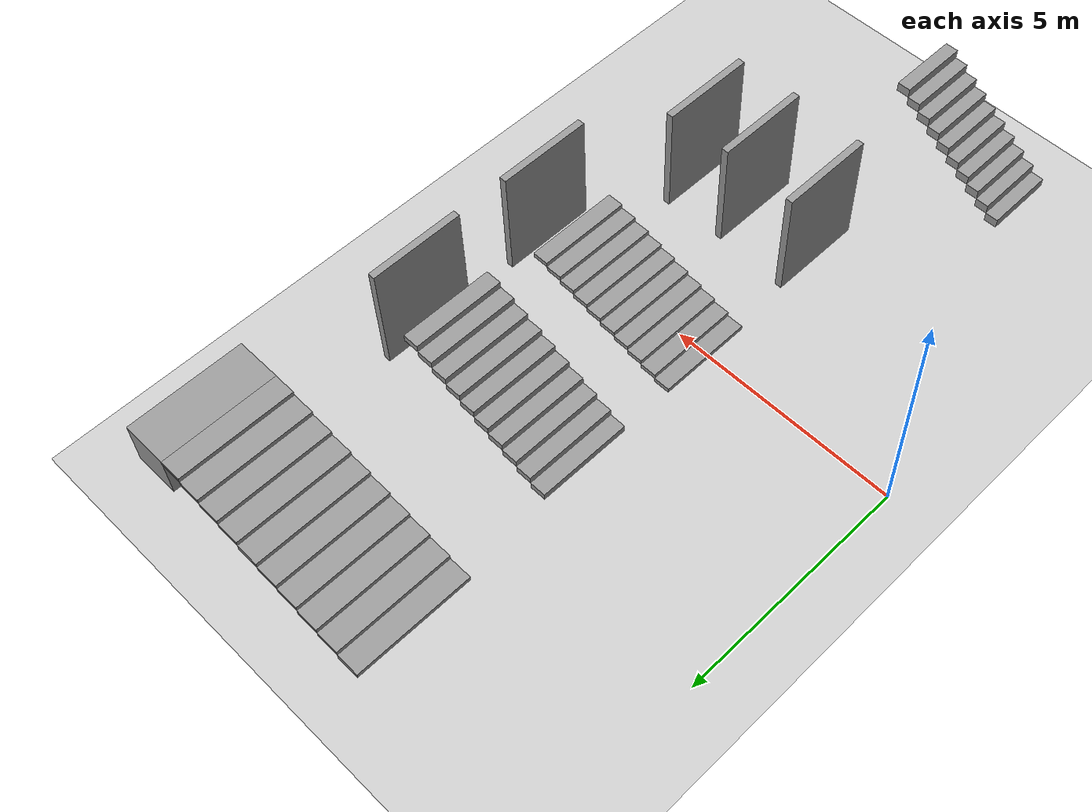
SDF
<sdf version="1.7">
 <world name="default">
  <light name="sun" type="directional">
   <pose>0 0 10 0 -0 0</pose>
   <diffuse>0.8 0.8 0.8 1</diffuse>
   <specular>0.2 0.2 0.2 1</specular>
   <attenuation>
    <range>1000</range>
    <constant>0.9</constant>
    <linear>0.01</linear>
    <quadratic>0.001</quadratic>
   </attenuation>
   <direction>-0.5 0.1 -0.9</direction>
   <spot><inner_angle>0</inner_angle><outer_angle>0</outer_angle><falloff>0</falloff></spot>
  </light>
  <model name="ground_plane">
   <static>1</static>
   <link name="link">
    <collision name="collision">
     <geometry><plane><normal>0 0 1</normal><size>100 100</size></plane></geometry>
     <surface>
      <contact><collide_bitmask>65535</collide_bitmask></contact>
      <friction><ode><mu>100</mu><mu2>50</mu2></ode></friction>
     </surface>
    </collision>
    <visual name="visual">
     <cast_shadows>0</cast_shadows>
     <geometry><plane><normal>0 0 1</normal><size>100 100</size></plane></geometry>
     <material>
      <script><uri>file://media/materials/scripts/gazebo.material</uri><name>Gazebo/Grey</name></script>
     </material>
    </visual>
   </link>
  </model>
  <gravity>0 0 -9.8</gravity>
  <magnetic_field>6e-06 2.3e-05 -4.2e-05</magnetic_field>
  <atmosphere type="adiabatic"/>
  <physics type="ode">
   <max_step_size>0.0002</max_step_size>
   <real_time_factor>1</real_time_factor>
   <real_time_update_rate>5000</real_time_update_rate>
   <gravity>0 0 -9.81</gravity>
   <ode>
    <solver><type>quick</type><iters>50</iters><sor>1.3</sor></solver>
    <constraints>
     <cfm>0.0</cfm>
     <erp>0.2</erp>
     <contact_max_correcting_vel>10.0</contact_max_correcting_vel>
     <contact_surface_layer>0.001</contact_surface_layer>
    </constraints>
   </ode>
  </physics>
  <scene><ambient>0.4 0.4 0.4 1</ambient><background>0.7 0.7 0.7 1</background><shadows>1</shadows></scene>
  <spherical_coordinates>
   <surface_model>EARTH_WGS84</surface_model>
   <latitude_deg>0</latitude_deg>
   <longitude_deg>0</longitude_deg>
   <elevation>0</elevation>
   <heading_deg>0</heading_deg>
  </spherical_coordinates>
  <model name="test_state">
   <pose>6 0 0 0 -0 1.57</pose>
   <link name="Stairs_5">
    <visual name="Stairs_5_Visual_0">
     <pose>0.0925 1.5725 0.05 0 -0 0</pose>
     <geometry><box><size>2 0.35 0.1</size></box></geometry>
     <material>
      <script><uri>file://media/materials/scripts/gazebo.material</uri><name>Gazebo/Grey</name></script>
      <ambient>1 1 1 1</ambient>
     </material>
     <meta><layer>0</layer></meta>
    </visual>
    <collision name="Stairs_5_Collision_0">
     <geometry><box><size>2 0.35 0.1</size></box></geometry>
     <pose>0.0925 1.5725 0.05 0 -0 0</pose>
    </collision>
    <visual name="Stairs_5_Visual_1">
     <pose>0.0925 1.2225 0.15 0 -0 0</pose>
     <geometry><box><size>2 0.35 0.1</size></box></geometry>
     <material>
      <script><uri>file://media/materials/scripts/gazebo.material</uri><name>Gazebo/Grey</name></script>
      <ambient>1 1 1 1</ambient>
     </material>
     <meta><layer>0</layer></meta>
    </visual>
    <collision name="Stairs_5_Collision_1">
     <geometry><box><size>2 0.35 0.1</size></box></geometry>
     <pose>0.0925 1.2225 0.15 0 -0 0</pose>
    </collision>
    <visual name="Stairs_5_Visual_2">
     <pose>0.0925 0.8725 0.25 0 -0 0</pose>
     <geometry><box><size>2 0.35 0.1</size></box></geometry>
     <material>
      <script><uri>file://media/materials/scripts/gazebo.material</uri><name>Gazebo/Grey</name></script>
      <ambient>1 1 1 1</ambient>
     </material>
     <meta><layer>0</layer></meta>
    </visual>
    <collision name="Stairs_5_Collision_2">
     <geometry><box><size>2 0.35 0.1</size></box></geometry>
     <pose>0.0925 0.8725 0.25 0 -0 0</pose>
    </collision>
    <visual name="Stairs_5_Visual_3">
     <pose>0.0925 0.5225 0.35 0 -0 0</pose>
     <geometry><box><size>2 0.35 0.1</size></box></geometry>
     <material>
      <script><uri>file://media/materials/scripts/gazebo.material</uri><name>Gazebo/Grey</name></script>
      <ambient>1 1 1 1</ambient>
     </material>
     <meta><layer>0</layer></meta>
    </visual>
    <collision name="Stairs_5_Collision_3">
     <geometry><box><size>2 0.35 0.1</size></box></geometry>
     <pose>0.0925 0.5225 0.35 0 -0 0</pose>
    </collision>
    <visual name="Stairs_5_Visual_4">
     <pose>0.0925 0.1725 0.45 0 -0 0</pose>
     <geometry><box><size>2 0.35 0.1</size></box></geometry>
     <material>
      <script><uri>file://media/materials/scripts/gazebo.material</uri><name>Gazebo/Grey</name></script>
      <ambient>1 1 1 1</ambient>
     </material>
     <meta><layer>0</layer></meta>
    </visual>
    <collision name="Stairs_5_Collision_4">
     <geometry><box><size>2 0.35 0.1</size></box></geometry>
     <pose>0.0925 0.1725 0.45 0 -0 0</pose>
    </collision>
    <visual name="Stairs_5_Visual_5">
     <pose>0.0925 -0.1775 0.55 0 -0 0</pose>
     <geometry><box><size>2 0.35 0.1</size></box></geometry>
     <material>
      <script><uri>file://media/materials/scripts/gazebo.material</uri><name>Gazebo/Grey</name></script>
      <ambient>1 1 1 1</ambient>
     </material>
     <meta><layer>0</layer></meta>
    </visual>
    <collision name="Stairs_5_Collision_5">
     <geometry><box><size>2 0.35 0.1</size></box></geometry>
     <pose>0.0925 -0.1775 0.55 0 -0 0</pose>
    </collision>
    <visual name="Stairs_5_Visual_6">
     <pose>0.0925 -0.5275 0.65 0 -0 0</pose>
     <geometry><box><size>2 0.35 0.1</size></box></geometry>
     <material>
      <script><uri>file://media/materials/scripts/gazebo.material</uri><name>Gazebo/Grey</name></script>
      <ambient>1 1 1 1</ambient>
     </material>
     <meta><layer>0</layer></meta>
    </visual>
    <collision name="Stairs_5_Collision_6">
     <geometry><box><size>2 0.35 0.1</size></box></geometry>
     <pose>0.0925 -0.5275 0.65 0 -0 0</pose>
    </collision>
    <visual name="Stairs_5_Visual_7">
     <pose>0.0925 -0.8775 0.75 0 -0 0</pose>
     <geometry><box><size>2 0.35 0.1</size></box></geometry>
     <material>
      <script><uri>file://media/materials/scripts/gazebo.material</uri><name>Gazebo/Grey</name></script>
      <ambient>1 1 1 1</ambient>
     </material>
     <meta><layer>0</layer></meta>
    </visual>
    <collision name="Stairs_5_Collision_7">
     <geometry><box><size>2 0.35 0.1</size></box></geometry>
     <pose>0.0925 -0.8775 0.75 0 -0 0</pose>
    </collision>
    <visual name="Stairs_5_Visual_8">
     <pose>0.0925 -1.2275 0.85 0 -0 0</pose>
     <geometry><box><size>2 0.35 0.1</size></box></geometry>
     <material>
      <script><uri>file://media/materials/scripts/gazebo.material</uri><name>Gazebo/Grey</name></script>
      <ambient>1 1 1 1</ambient>
     </material>
     <meta><layer>0</layer></meta>
    </visual>
    <collision name="Stairs_5_Collision_8">
     <geometry><box><size>2 0.35 0.1</size></box></geometry>
     <pose>0.0925 -1.2275 0.85 0 -0 0</pose>
    </collision>
    <visual name="Stairs_5_Visual_9">
     <pose>0.0925 -1.5775 0.95 0 -0 0</pose>
     <geometry><box><size>2 0.35 0.1</size></box></geometry>
     <material>
      <script><uri>file://media/materials/scripts/gazebo.material</uri><name>Gazebo/Grey</name></script>
      <ambient>1 1 1 1</ambient>
     </material>
     <meta><layer>0</layer></meta>
    </visual>
    <collision name="Stairs_5_Collision_9">
     <geometry><box><size>2 0.35 0.1</size></box></geometry>
     <pose>0.0925 -1.5775 0.95 0 -0 0</pose>
    </collision>
   </link>
   <link name="Stairs_7">
    <visual name="Stairs_7_Visual_0">
     <pose>3.2425 1.5825 0.075 0 -0 0</pose>
     <geometry><box><size>2 0.35 0.15</size></box></geometry>
     <material>
      <script><uri>file://media/materials/scripts/gazebo.material</uri><name>Gazebo/Grey</name></script>
      <ambient>1 1 1 1</ambient>
     </material>
     <meta><layer>0</layer></meta>
    </visual>
    <collision name="Stairs_7_Collision_0">
     <geometry><box><size>2 0.35 0.15</size></box></geometry>
     <pose>3.2425 1.5825 0.075 0 -0 0</pose>
    </collision>
    <visual name="Stairs_7_Visual_1">
     <pose>3.2425 1.2325 0.225 0 -0 0</pose>
     <geometry><box><size>2 0.35 0.15</size></box></geometry>
     <material>
      <script><uri>file://media/materials/scripts/gazebo.material</uri><name>Gazebo/Grey</name></script>
      <ambient>1 1 1 1</ambient>
     </material>
     <meta><layer>0</layer></meta>
    </visual>
    <collision name="Stairs_7_Collision_1">
     <geometry><box><size>2 0.35 0.15</size></box></geometry>
     <pose>3.2425 1.2325 0.225 0 -0 0</pose>
    </collision>
    <visual name="Stairs_7_Visual_2">
     <pose>3.2425 0.8825 0.375 0 -0 0</pose>
     <geometry><box><size>2 0.35 0.15</size></box></geometry>
     <material>
      <script><uri>file://media/materials/scripts/gazebo.material</uri><name>Gazebo/Grey</name></script>
      <ambient>1 1 1 1</ambient>
     </material>
     <meta><layer>0</layer></meta>
    </visual>
    <collision name="Stairs_7_Collision_2">
     <geometry><box><size>2 0.35 0.15</size></box></geometry>
     <pose>3.2425 0.8825 0.375 0 -0 0</pose>
    </collision>
    <visual name="Stairs_7_Visual_3">
     <pose>3.2425 0.5325 0.525 0 -0 0</pose>
     <geometry><box><size>2 0.35 0.15</size></box></geometry>
     <material>
      <script><uri>file://media/materials/scripts/gazebo.material</uri><name>Gazebo/Grey</name></script>
      <ambient>1 1 1 1</ambient>
     </material>
     <meta><layer>0</layer></meta>
    </visual>
    <collision name="Stairs_7_Collision_3">
     <geometry><box><size>2 0.35 0.15</size></box></geometry>
     <pose>3.2425 0.5325 0.525 0 -0 0</pose>
    </collision>
    <visual name="Stairs_7_Visual_4">
     <pose>3.2425 0.1825 0.675 0 -0 0</pose>
     <geometry><box><size>2 0.35 0.15</size></box></geometry>
     <material>
      <script><uri>file://media/materials/scripts/gazebo.material</uri><name>Gazebo/Grey</name></script>
      <ambient>1 1 1 1</ambient>
     </material>
     <meta><layer>0</layer></meta>
    </visual>
    <collision name="Stairs_7_Collision_4">
     <geometry><box><size>2 0.35 0.15</size></box></geometry>
     <pose>3.2425 0.1825 0.675 0 -0 0</pose>
    </collision>
    <visual name="Stairs_7_Visual_5">
     <pose>3.2425 -0.1675 0.825 0 -0 0</pose>
     <geometry><box><size>2 0.35 0.15</size></box></geometry>
     <material>
      <script><uri>file://media/materials/scripts/gazebo.material</uri><name>Gazebo/Grey</name></script>
      <ambient>1 1 1 1</ambient>
     </material>
     <meta><layer>0</layer></meta>
    </visual>
    <collision name="Stairs_7_Collision_5">
     <geometry><box><size>2 0.35 0.15</size></box></geometry>
     <pose>3.2425 -0.1675 0.825 0 -0 0</pose>
    </collision>
    <visual name="Stairs_7_Visual_6">
     <pose>3.2425 -0.5175 0.975 0 -0 0</pose>
     <geometry><box><size>2 0.35 0.15</size></box></geometry>
     <material>
      <script><uri>file://media/materials/scripts/gazebo.material</uri><name>Gazebo/Grey</name></script>
      <ambient>1 1 1 1</ambient>
     </material>
     <meta><layer>0</layer></meta>
    </visual>
    <collision name="Stairs_7_Collision_6">
     <geometry><box><size>2 0.35 0.15</size></box></geometry>
     <pose>3.2425 -0.5175 0.975 0 -0 0</pose>
    </collision>
    <visual name="Stairs_7_Visual_7">
     <pose>3.2425 -0.8675 1.125 0 -0 0</pose>
     <geometry><box><size>2 0.35 0.15</size></box></geometry>
     <material>
      <script><uri>file://media/materials/scripts/gazebo.material</uri><name>Gazebo/Grey</name></script>
      <ambient>1 1 1 1</ambient>
     </material>
     <meta><layer>0</layer></meta>
    </visual>
    <collision name="Stairs_7_Collision_7">
     <geometry><box><size>2 0.35 0.15</size></box></geometry>
     <pose>3.2425 -0.8675 1.125 0 -0 0</pose>
    </collision>
    <visual name="Stairs_7_Visual_8">
     <pose>3.2425 -1.2175 1.275 0 -0 0</pose>
     <geometry><box><size>2 0.35 0.15</size></box></geometry>
     <material>
      <script><uri>file://media/materials/scripts/gazebo.material</uri><name>Gazebo/Grey</name></script>
      <ambient>1 1 1 1</ambient>
     </material>
     <meta><layer>0</layer></meta>
    </visual>
    <collision name="Stairs_7_Collision_8">
     <geometry><box><size>2 0.35 0.15</size></box></geometry>
     <pose>3.2425 -1.2175 1.275 0 -0 0</pose>
    </collision>
    <visual name="Stairs_7_Visual_9">
     <pose>3.2425 -1.5675 1.425 0 -0 0</pose>
     <geometry><box><size>2 0.35 0.15</size></box></geometry>
     <material>
      <script><uri>file://media/materials/scripts/gazebo.material</uri><name>Gazebo/Grey</name></script>
      <ambient>1 1 1 1</ambient>
     </material>
     <meta><layer>0</layer></meta>
    </visual>
    <collision name="Stairs_7_Collision_9">
     <geometry><box><size>2 0.35 0.15</size></box></geometry>
     <pose>3.2425 -1.5675 1.425 0 -0 0</pose>
    </collision>
   </link>
   <link name="Wall_0">
    <collision name="Wall_0_Collision">
     <geometry><box><size>2 0.15 2.5</size></box></geometry>
     <pose>0 0 1.25 0 -0 0</pose>
    </collision>
    <visual name="Wall_0_Visual">
     <pose>0 0 1.25 0 -0 0</pose>
     <geometry><box><size>2 0.15 2.5</size></box></geometry>
     <material>
      <script><uri>file://media/materials/scripts/gazebo.material</uri><name>Gazebo/Grey</name></script>
      <ambient>1 1 1 1</ambient>
     </material>
     <meta><layer>0</layer></meta>
    </visual>
    <pose>-3.1625 1.5475 0 0 -0 3.14159</pose>
   </link>
   <link name="Wall_2">
    <collision name="Wall_2_Collision">
     <geometry><box><size>2 0.15 2.5</size></box></geometry>
     <pose>0 0 1.25 0 -0 0</pose>
    </collision>
    <visual name="Wall_2_Visual">
     <pose>0 0 1.25 0 -0 0</pose>
     <geometry><box><size>2 0.15 2.5</size></box></geometry>
     <material>
      <script><uri>file://media/materials/scripts/gazebo.material</uri><name>Gazebo/Grey</name></script>
      <ambient>1 1 1 1</ambient>
     </material>
     <meta><layer>0</layer></meta>
    </visual>
    <pose>-3.1725 -1.4125 0 0 -0 3.14159</pose>
   </link>
   <link name="Wall_4">
    <collision name="Wall_4_Collision">
     <geometry><box><size>2 0.15 2.5</size></box></geometry>
     <pose>0 0 1.25 0 -0 0</pose>
    </collision>
    <visual name="Wall_4_Visual">
     <pose>0 0 1.25 0 -0 0</pose>
     <geometry><box><size>2 0.15 2.5</size></box></geometry>
     <material>
      <script><uri>file://media/materials/scripts/gazebo.material</uri><name>Gazebo/Grey</name></script>
      <ambient>1 1 1 1</ambient>
     </material>
     <meta><layer>0</layer></meta>
    </visual>
    <pose>0.0975 -2.4725 0 0 -0 3.14159</pose>
   </link>
   <link name="Wall_6">
    <collision name="Wall_6_Collision">
     <geometry><box><size>2 0.15 2.5</size></box></geometry>
     <pose>0 0 1.25 0 -0 0</pose>
    </collision>
    <visual name="Wall_6_Visual">
     <pose>0 0 1.25 0 -0 0</pose>
     <geometry><box><size>2 0.15 2.5</size></box></geometry>
     <material>
      <script><uri>file://media/materials/scripts/gazebo.material</uri><name>Gazebo/Grey</name></script>
      <ambient>1 1 1 1</ambient>
     </material>
     <meta><layer>0</layer></meta>
    </visual>
    <pose>3.2075 -2.4825 0 0 -0 3.14159</pose>
   </link>
   <link name="Wall_8">
    <collision name="Wall_8_Collision">
     <geometry><box><size>2 0.15 2.5</size></box></geometry>
     <pose>0 0 1.25 0 -0 0</pose>
    </collision>
    <visual name="Wall_8_Visual">
     <pose>0 0 1.25 0 -0 0</pose>
     <geometry><box><size>2 0.15 2.5</size></box></geometry>
     <material>
      <script><uri>file://media/materials/scripts/gazebo.material</uri><name>Gazebo/Grey</name></script>
      <ambient>1 1 1 1</ambient>
     </material>
     <meta><layer>0</layer></meta>
    </visual>
    <pose>-3.2425 -0.0825 0 0 -0 3.14159</pose>
   </link>
   <static>1</static>
  </model>
  <model name="deepStairs">
   <link name="Stairs_3">
    <visual name="Stairs_3_Visual_0">
     <pose>1.454 4.7365 0.05 0 -0 0</pose>
     <geometry><box><size>2.5 0.5 0.1</size></box></geometry>
     <material>
      <script><uri>file://media/materials/scripts/gazebo.material</uri><name>Gazebo/Grey</name></script>
      <ambient>1 1 1 1</ambient>
      <shader type="pixel"/>
     </material>
     <meta><layer>0</layer></meta>
    </visual>
    <visual name="Stairs_3_Visual_1">
     <pose>1.454 4.2365 0.15 0 -0 0</pose>
     <geometry><box><size>2.5 0.5 0.1</size></box></geometry>
     <material>
      <script><uri>file://media/materials/scripts/gazebo.material</uri><name>Gazebo/Grey</name></script>
      <ambient>1 1 1 1</ambient>
      <shader type="pixel"/>
     </material>
     <meta><layer>0</layer></meta>
    </visual>
    <visual name="Stairs_3_Visual_2">
     <pose>1.454 3.7365 0.25 0 -0 0</pose>
     <geometry><box><size>2.5 0.5 0.1</size></box></geometry>
     <material>
      <script><uri>file://media/materials/scripts/gazebo.material</uri><name>Gazebo/Grey</name></script>
      <ambient>1 1 1 1</ambient>
      <shader type="pixel"/>
     </material>
     <meta><layer>0</layer></meta>
    </visual>
    <visual name="Stairs_3_Visual_3">
     <pose>1.454 3.2365 0.35 0 -0 0</pose>
     <geometry><box><size>2.5 0.5 0.1</size></box></geometry>
     <material>
      <script><uri>file://media/materials/scripts/gazebo.material</uri><name>Gazebo/Grey</name></script>
      <ambient>1 1 1 1</ambient>
      <shader type="pixel"/>
     </material>
     <meta><layer>0</layer></meta>
    </visual>
    <visual name="Stairs_3_Visual_4">
     <pose>1.454 2.7365 0.45 0 -0 0</pose>
     <geometry><box><size>2.5 0.5 0.1</size></box></geometry>
     <material>
      <script><uri>file://media/materials/scripts/gazebo.material</uri><name>Gazebo/Grey</name></script>
      <ambient>1 1 1 1</ambient>
      <shader type="pixel"/>
     </material>
     <meta><layer>0</layer></meta>
    </visual>
    <visual name="Stairs_3_Visual_5">
     <pose>1.454 2.2365 0.55 0 -0 0</pose>
     <geometry><box><size>2.5 0.5 0.1</size></box></geometry>
     <material>
      <script><uri>file://media/materials/scripts/gazebo.material</uri><name>Gazebo/Grey</name></script>
      <ambient>1 1 1 1</ambient>
      <shader type="pixel"/>
     </material>
     <meta><layer>0</layer></meta>
    </visual>
    <visual name="Stairs_3_Visual_6">
     <pose>1.454 1.7365 0.65 0 -0 0</pose>
     <geometry><box><size>2.5 0.5 0.1</size></box></geometry>
     <material>
      <script><uri>file://media/materials/scripts/gazebo.material</uri><name>Gazebo/Grey</name></script>
      <ambient>1 1 1 1</ambient>
      <shader type="pixel"/>
     </material>
     <meta><layer>0</layer></meta>
    </visual>
    <visual name="Stairs_3_Visual_7">
     <pose>1.454 1.2365 0.75 0 -0 0</pose>
     <geometry><box><size>2.5 0.5 0.1</size></box></geometry>
     <material>
      <script><uri>file://media/materials/scripts/gazebo.material</uri><name>Gazebo/Grey</name></script>
      <ambient>1 1 1 1</ambient>
      <shader type="pixel"/>
     </material>
     <meta><layer>0</layer></meta>
    </visual>
    <visual name="Stairs_3_Visual_8">
     <pose>1.454 0.7365 0.85 0 -0 0</pose>
     <geometry><box><size>2.5 0.5 0.1</size></box></geometry>
     <material>
      <script><uri>file://media/materials/scripts/gazebo.material</uri><name>Gazebo/Grey</name></script>
      <ambient>1 1 1 1</ambient>
      <shader type="pixel"/>
     </material>
     <meta><layer>0</layer></meta>
    </visual>
    <visual name="Stairs_3_Visual_9">
     <pose>1.454 0.2365 0.95 0 -0 0</pose>
     <geometry><box><size>2.5 0.5 0.1</size></box></geometry>
     <material>
      <script><uri>file://media/materials/scripts/gazebo.material</uri><name>Gazebo/Grey</name></script>
      <ambient>1 1 1 1</ambient>
      <shader type="pixel"/>
     </material>
     <meta><layer>0</layer></meta>
    </visual>
    <collision name="Stairs_3_Collision_0">
     <pose>1.454 4.7365 0.05 0 -0 0</pose>
     <geometry><box><size>2.5 0.5 0.1</size></box></geometry>
     <surface>
      <friction>
       <ode><mu>1</mu><mu2>1</mu2><fdir1>0 0 0</fdir1><slip1>0</slip1><slip2>0</slip2></ode>
       <torsional>
        <coefficient>1</coefficient>
        <patch_radius>0</patch_radius>
        <surface_radius>0</surface_radius>
        <use_patch_radius>1</use_patch_radius>
        <ode><slip>0</slip></ode>
       </torsional>
      </friction>
      <bounce><restitution_coefficient>0</restitution_coefficient><threshold>1e+06</threshold></bounce>
      <contact>
       <collide_without_contact>0</collide_without_contact>
       <collide_without_contact_bitmask>1</collide_without_contact_bitmask>
       <collide_bitmask>1</collide_bitmask>
       <ode>
        <soft_cfm>0</soft_cfm>
        <soft_erp>0.2</soft_erp>
        <kp>1e+13</kp>
        <kd>1</kd>
        <max_vel>0.01</max_vel>
        <min_depth>0</min_depth>
       </ode>
       <bullet>
        <split_impulse>1</split_impulse>
        <split_impulse_penetration_threshold>-0.01</split_impulse_penetration_threshold>
        <soft_cfm>0</soft_cfm>
        <soft_erp>0.2</soft_erp>
        <kp>1e+13</kp>
        <kd>1</kd>
       </bullet>
      </contact>
     </surface>
    </collision>
    <collision name="Stairs_3_Collision_1">
     <pose>1.454 4.2365 0.15 0 -0 0</pose>
     <geometry><box><size>2.5 0.5 0.1</size></box></geometry>
     <surface>
      <friction>
       <ode><mu>1</mu><mu2>1</mu2><fdir1>0 0 0</fdir1><slip1>0</slip1><slip2>0</slip2></ode>
       <torsional>
        <coefficient>1</coefficient>
        <patch_radius>0</patch_radius>
        <surface_radius>0</surface_radius>
        <use_patch_radius>1</use_patch_radius>
        <ode><slip>0</slip></ode>
       </torsional>
      </friction>
      <bounce><restitution_coefficient>0</restitution_coefficient><threshold>1e+06</threshold></bounce>
      <contact>
       <collide_without_contact>0</collide_without_contact>
       <collide_without_contact_bitmask>1</collide_without_contact_bitmask>
       <collide_bitmask>1</collide_bitmask>
       <ode>
        <soft_cfm>0</soft_cfm>
        <soft_erp>0.2</soft_erp>
        <kp>1e+13</kp>
        <kd>1</kd>
        <max_vel>0.01</max_vel>
        <min_depth>0</min_depth>
       </ode>
       <bullet>
        <split_impulse>1</split_impulse>
        <split_impulse_penetration_threshold>-0.01</split_impulse_penetration_threshold>
        <soft_cfm>0</soft_cfm>
        <soft_erp>0.2</soft_erp>
        <kp>1e+13</kp>
        <kd>1</kd>
       </bullet>
      </contact>
     </surface>
    </collision>
    <collision name="Stairs_3_Collision_2">
     <pose>1.454 3.7365 0.25 0 -0 0</pose>
     <geometry><box><size>2.5 0.5 0.1</size></box></geometry>
     <surface>
      <friction>
       <ode><mu>1</mu><mu2>1</mu2><fdir1>0 0 0</fdir1><slip1>0</slip1><slip2>0</slip2></ode>
       <torsional>
        <coefficient>1</coefficient>
        <patch_radius>0</patch_radius>
        <surface_radius>0</surface_radius>
        <use_patch_radius>1</use_patch_radius>
        <ode><slip>0</slip></ode>
       </torsional>
      </friction>
      <bounce><restitution_coefficient>0</restitution_coefficient><threshold>1e+06</threshold></bounce>
      <contact>
       <collide_without_contact>0</collide_without_contact>
       <collide_without_contact_bitmask>1</collide_without_contact_bitmask>
       <collide_bitmask>1</collide_bitmask>
       <ode>
        <soft_cfm>0</soft_cfm>
        <soft_erp>0.2</soft_erp>
        <kp>1e+13</kp>
        <kd>1</kd>
        <max_vel>0.01</max_vel>
        <min_depth>0</min_depth>
       </ode>
       <bullet>
        <split_impulse>1</split_impulse>
        <split_impulse_penetration_threshold>-0.01</split_impulse_penetration_threshold>
        <soft_cfm>0</soft_cfm>
        <soft_erp>0.2</soft_erp>
        <kp>1e+13</kp>
        <kd>1</kd>
       </bullet>
      </contact>
     </surface>
    </collision>
    <collision name="Stairs_3_Collision_3">
     <pose>1.454 3.2365 0.35 0 -0 0</pose>
     <geometry><box><size>2.5 0.5 0.1</size></box></geometry>
     <surface>
      <friction>
       <ode><mu>1</mu><mu2>1</mu2><fdir1>0 0 0</fdir1><slip1>0</slip1><slip2>0</slip2></ode>
       <torsional>
        <coefficient>1</coefficient>
        <patch_radius>0</patch_radius>
        <surface_radius>0</surface_radius>
        <use_patch_radius>1</use_patch_radius>
        <ode><slip>0</slip></ode>
       </torsional>
      </friction>
      <bounce><restitution_coefficient>0</restitution_coefficient><threshold>1e+06</threshold></bounce>
      <contact>
       <collide_without_contact>0</collide_without_contact>
       <collide_without_contact_bitmask>1</collide_without_contact_bitmask>
       <collide_bitmask>1</collide_bitmask>
       <ode>
        <soft_cfm>0</soft_cfm>
        <soft_erp>0.2</soft_erp>
        <kp>1e+13</kp>
        <kd>1</kd>
        <max_vel>0.01</max_vel>
        <min_depth>0</min_depth>
       </ode>
       <bullet>
        <split_impulse>1</split_impulse>
        <split_impulse_penetration_threshold>-0.01</split_impulse_penetration_threshold>
        <soft_cfm>0</soft_cfm>
        <soft_erp>0.2</soft_erp>
        <kp>1e+13</kp>
        <kd>1</kd>
       </bullet>
      </contact>
     </surface>
    </collision>
    <collision name="Stairs_3_Collision_4">
     <pose>1.454 2.7365 0.45 0 -0 0</pose>
     <geometry><box><size>2.5 0.5 0.1</size></box></geometry>
     <surface>
      <friction>
       <ode><mu>1</mu><mu2>1</mu2><fdir1>0 0 0</fdir1><slip1>0</slip1><slip2>0</slip2></ode>
       <torsional>
        <coefficient>1</coefficient>
        <patch_radius>0</patch_radius>
        <surface_radius>0</surface_radius>
        <use_patch_radius>1</use_patch_radius>
        <ode><slip>0</slip></ode>
       </torsional>
      </friction>
      <bounce><restitution_coefficient>0</restitution_coefficient><threshold>1e+06</threshold></bounce>
      <contact>
       <collide_without_contact>0</collide_without_contact>
       <collide_without_contact_bitmask>1</collide_without_contact_bitmask>
       <collide_bitmask>1</collide_bitmask>
       <ode>
        <soft_cfm>0</soft_cfm>
        <soft_erp>0.2</soft_erp>
        <kp>1e+13</kp>
        <kd>1</kd>
        <max_vel>0.01</max_vel>
        <min_depth>0</min_depth>
       </ode>
       <bullet>
        <split_impulse>1</split_impulse>
        <split_impulse_penetration_threshold>-0.01</split_impulse_penetration_threshold>
        <soft_cfm>0</soft_cfm>
        <soft_erp>0.2</soft_erp>
        <kp>1e+13</kp>
        <kd>1</kd>
       </bullet>
      </contact>
     </surface>
    </collision>
    <collision name="Stairs_3_Collision_5">
     <pose>1.454 2.2365 0.55 0 -0 0</pose>
     <geometry><box><size>2.5 0.5 0.1</size></box></geometry>
     <surface>
      <friction>
       <ode><mu>1</mu><mu2>1</mu2><fdir1>0 0 0</fdir1><slip1>0</slip1><slip2>0</slip2></ode>
       <torsional>
        <coefficient>1</coefficient>
        <patch_radius>0</patch_radius>
        <surface_radius>0</surface_radius>
        <use_patch_radius>1</use_patch_radius>
        <ode><slip>0</slip></ode>
       </torsional>
      </friction>
      <bounce><restitution_coefficient>0</restitution_coefficient><threshold>1e+06</threshold></bounce>
      <contact>
       <collide_without_contact>0</collide_without_contact>
       <collide_without_contact_bitmask>1</collide_without_contact_bitmask>
       <collide_bitmask>1</collide_bitmask>
       <ode>
        <soft_cfm>0</soft_cfm>
        <soft_erp>0.2</soft_erp>
        <kp>1e+13</kp>
        <kd>1</kd>
        <max_vel>0.01</max_vel>
        <min_depth>0</min_depth>
       </ode>
       <bullet>
        <split_impulse>1</split_impulse>
        <split_impulse_penetration_threshold>-0.01</split_impulse_penetration_threshold>
        <soft_cfm>0</soft_cfm>
        <soft_erp>0.2</soft_erp>
        <kp>1e+13</kp>
        <kd>1</kd>
       </bullet>
      </contact>
     </surface>
    </collision>
    <collision name="Stairs_3_Collision_6">
     <pose>1.454 1.7365 0.65 0 -0 0</pose>
     <geometry><box><size>2.5 0.5 0.1</size></box></geometry>
     <surface>
      <friction>
       <ode><mu>1</mu><mu2>1</mu2><fdir1>0 0 0</fdir1><slip1>0</slip1><slip2>0</slip2></ode>
       <torsional>
        <coefficient>1</coefficient>
        <patch_radius>0</patch_radius>
        <surface_radius>0</surface_radius>
        <use_patch_radius>1</use_patch_radius>
        <ode><slip>0</slip></ode>
       </torsional>
      </friction>
      <bounce><restitution_coefficient>0</restitution_coefficient><threshold>1e+06</threshold></bounce>
      <contact>
       <collide_without_contact>0</collide_without_contact>
       <collide_without_contact_bitmask>1</collide_without_contact_bitmask>
       <collide_bitmask>1</collide_bitmask>
       <ode>
        <soft_cfm>0</soft_cfm>
        <soft_erp>0.2</soft_erp>
        <kp>1e+13</kp>
        <kd>1</kd>
        <max_vel>0.01</max_vel>
        <min_depth>0</min_depth>
       </ode>
       <bullet>
        <split_impulse>1</split_impulse>
        <split_impulse_penetration_threshold>-0.01</split_impulse_penetration_threshold>
        <soft_cfm>0</soft_cfm>
        <soft_erp>0.2</soft_erp>
        <kp>1e+13</kp>
        <kd>1</kd>
       </bullet>
      </contact>
     </surface>
    </collision>
    <collision name="Stairs_3_Collision_7">
     <pose>1.454 1.2365 0.75 0 -0 0</pose>
     <geometry><box><size>2.5 0.5 0.1</size></box></geometry>
     <surface>
      <friction>
       <ode><mu>1</mu><mu2>1</mu2><fdir1>0 0 0</fdir1><slip1>0</slip1><slip2>0</slip2></ode>
       <torsional>
        <coefficient>1</coefficient>
        <patch_radius>0</patch_radius>
        <surface_radius>0</surface_radius>
        <use_patch_radius>1</use_patch_radius>
        <ode><slip>0</slip></ode>
       </torsional>
      </friction>
      <bounce><restitution_coefficient>0</restitution_coefficient><threshold>1e+06</threshold></bounce>
      <contact>
       <collide_without_contact>0</collide_without_contact>
       <collide_without_contact_bitmask>1</collide_without_contact_bitmask>
       <collide_bitmask>1</collide_bitmask>
       <ode>
        <soft_cfm>0</soft_cfm>
        <soft_erp>0.2</soft_erp>
        <kp>1e+13</kp>
        <kd>1</kd>
        <max_vel>0.01</max_vel>
        <min_depth>0</min_depth>
       </ode>
       <bullet>
        <split_impulse>1</split_impulse>
        <split_impulse_penetration_threshold>-0.01</split_impulse_penetration_threshold>
        <soft_cfm>0</soft_cfm>
        <soft_erp>0.2</soft_erp>
        <kp>1e+13</kp>
        <kd>1</kd>
       </bullet>
      </contact>
     </surface>
    </collision>
    <collision name="Stairs_3_Collision_8">
     <pose>1.454 0.7365 0.85 0 -0 0</pose>
     <geometry><box><size>2.5 0.5 0.1</size></box></geometry>
     <surface>
      <friction>
       <ode><mu>1</mu><mu2>1</mu2><fdir1>0 0 0</fdir1><slip1>0</slip1><slip2>0</slip2></ode>
       <torsional>
        <coefficient>1</coefficient>
        <patch_radius>0</patch_radius>
        <surface_radius>0</surface_radius>
        <use_patch_radius>1</use_patch_radius>
        <ode><slip>0</slip></ode>
       </torsional>
      </friction>
      <bounce><restitution_coefficient>0</restitution_coefficient><threshold>1e+06</threshold></bounce>
      <contact>
       <collide_without_contact>0</collide_without_contact>
       <collide_without_contact_bitmask>1</collide_without_contact_bitmask>
       <collide_bitmask>1</collide_bitmask>
       <ode>
        <soft_cfm>0</soft_cfm>
        <soft_erp>0.2</soft_erp>
        <kp>1e+13</kp>
        <kd>1</kd>
        <max_vel>0.01</max_vel>
        <min_depth>0</min_depth>
       </ode>
       <bullet>
        <split_impulse>1</split_impulse>
        <split_impulse_penetration_threshold>-0.01</split_impulse_penetration_threshold>
        <soft_cfm>0</soft_cfm>
        <soft_erp>0.2</soft_erp>
        <kp>1e+13</kp>
        <kd>1</kd>
       </bullet>
      </contact>
     </surface>
    </collision>
    <collision name="Stairs_3_Collision_9">
     <pose>1.454 0.2365 0.95 0 -0 0</pose>
     <geometry><box><size>2.5 0.5 0.1</size></box></geometry>
     <surface>
      <friction>
       <ode><mu>1</mu><mu2>1</mu2><fdir1>0 0 0</fdir1><slip1>0</slip1><slip2>0</slip2></ode>
       <torsional>
        <coefficient>1</coefficient>
        <patch_radius>0</patch_radius>
        <surface_radius>0</surface_radius>
        <use_patch_radius>1</use_patch_radius>
        <ode><slip>0</slip></ode>
       </torsional>
      </friction>
      <bounce><restitution_coefficient>0</restitution_coefficient><threshold>1e+06</threshold></bounce>
      <contact>
       <collide_without_contact>0</collide_without_contact>
       <collide_without_contact_bitmask>1</collide_without_contact_bitmask>
       <collide_bitmask>1</collide_bitmask>
       <ode>
        <soft_cfm>0</soft_cfm>
        <soft_erp>0.2</soft_erp>
        <kp>1e+13</kp>
        <kd>1</kd>
        <max_vel>0.01</max_vel>
        <min_depth>0</min_depth>
       </ode>
       <bullet>
        <split_impulse>1</split_impulse>
        <split_impulse_penetration_threshold>-0.01</split_impulse_penetration_threshold>
        <soft_cfm>0</soft_cfm>
        <soft_erp>0.2</soft_erp>
        <kp>1e+13</kp>
        <kd>1</kd>
       </bullet>
      </contact>
     </surface>
    </collision>
   </link>
   <link name="link_0">
    <inertial>
     <mass>0</mass>
     <inertia><ixx>0</ixx><ixy>0</ixy><ixz>0</ixz><iyy>0</iyy><iyz>0</iyz><izz>0</izz></inertia>
    </inertial>
    <pose>1.45 -0.499999 0.5 0 0 -1.57</pose>
    <gravity>0</gravity>
    <visual name="visual">
     <geometry><box><size>1 2.5 1</size></box></geometry>
     <material>
      <lighting>1</lighting>
      <script><uri>file://media/materials/scripts/gazebo.material</uri><name>Gazebo/Grey</name></script>
      <shader type="pixel"><normal_map>__default__</normal_map></shader>
      <ambient>0.3 0.3 0.3 1</ambient>
      <diffuse>0.7 0.7 0.7 1</diffuse>
      <specular>0.01 0.01 0.01 1</specular>
      <emissive>0 0 0 1</emissive>
     </material>
    </visual>
    <collision name="collision">
     <geometry><box><size>1 1 1</size></box></geometry>
     <surface>
      <friction>
       <ode><mu>1</mu><mu2>1</mu2><fdir1>0 0 0</fdir1><slip1>0</slip1><slip2>0</slip2></ode>
       <torsional>
        <coefficient>1</coefficient>
        <patch_radius>0</patch_radius>
        <surface_radius>0</surface_radius>
        <use_patch_radius>1</use_patch_radius>
        <ode><slip>0</slip></ode>
       </torsional>
      </friction>
      <bounce><restitution_coefficient>0</restitution_coefficient><threshold>1e+06</threshold></bounce>
      <contact>
       <collide_without_contact>0</collide_without_contact>
       <collide_without_contact_bitmask>1</collide_without_contact_bitmask>
       <collide_bitmask>1</collide_bitmask>
       <ode>
        <soft_cfm>0</soft_cfm>
        <soft_erp>0.2</soft_erp>
        <kp>1e+13</kp>
        <kd>1</kd>
        <max_vel>0.01</max_vel>
        <min_depth>0</min_depth>
       </ode>
       <bullet>
        <split_impulse>1</split_impulse>
        <split_impulse_penetration_threshold>-0.01</split_impulse_penetration_threshold>
        <soft_cfm>0</soft_cfm>
        <soft_erp>0.2</soft_erp>
        <kp>1e+13</kp>
        <kd>1</kd>
       </bullet>
      </contact>
     </surface>
    </collision>
   </link>
   <static>1</static>
   <pose>9 6 0 0 -0 1.57</pose>
  </model>
  <model name="Untitled20cm">
   <pose>3 -7 0 0 -0 1.57</pose>
   <link name="Stairs_1">
    <visual name="Stairs_1_Visual_0">
     <pose>0 0.505 0.1 0 -0 0</pose>
     <geometry><box><size>1.5 0.28 0.2</size></box></geometry>
     <material>
      <script><uri>file://media/materials/scripts/gazebo.material</uri><name>Gazebo/Grey</name></script>
      <ambient>1 1 1 1</ambient>
     </material>
     <meta><layer>0</layer></meta>
    </visual>
    <collision name="Stairs_1_Collision_0">
     <geometry><box><size>1.5 0.28 0.2</size></box></geometry>
     <pose>0 0.505 0.1 0 -0 0</pose>
    </collision>
    <visual name="Stairs_1_Visual_1">
     <pose>0 0.225 0.3 0 -0 0</pose>
     <geometry><box><size>1.5 0.28 0.2</size></box></geometry>
     <material>
      <script><uri>file://media/materials/scripts/gazebo.material</uri><name>Gazebo/Grey</name></script>
      <ambient>1 1 1 1</ambient>
     </material>
     <meta><layer>0</layer></meta>
    </visual>
    <collision name="Stairs_1_Collision_1">
     <geometry><box><size>1.5 0.28 0.2</size></box></geometry>
     <pose>0 0.225 0.3 0 -0 0</pose>
    </collision>
    <visual name="Stairs_1_Visual_2">
     <pose>0 -0.055 0.5 0 -0 0</pose>
     <geometry><box><size>1.5 0.28 0.2</size></box></geometry>
     <material>
      <script><uri>file://media/materials/scripts/gazebo.material</uri><name>Gazebo/Grey</name></script>
      <ambient>1 1 1 1</ambient>
     </material>
     <meta><layer>0</layer></meta>
    </visual>
    <collision name="Stairs_1_Collision_2">
     <geometry><box><size>1.5 0.28 0.2</size></box></geometry>
     <pose>0 -0.055 0.5 0 -0 0</pose>
    </collision>
    <visual name="Stairs_1_Visual_3">
     <pose>0 -0.335 0.7 0 -0 0</pose>
     <geometry><box><size>1.5 0.28 0.2</size></box></geometry>
     <material>
      <script><uri>file://media/materials/scripts/gazebo.material</uri><name>Gazebo/Grey</name></script>
      <ambient>1 1 1 1</ambient>
     </material>
     <meta><layer>0</layer></meta>
    </visual>
    <collision name="Stairs_1_Collision_3">
     <geometry><box><size>1.5 0.28 0.2</size></box></geometry>
     <pose>0 -0.335 0.7 0 -0 0</pose>
    </collision>
    <visual name="Stairs_1_Visual_4">
     <pose>0 -0.615 0.9 0 -0 0</pose>
     <geometry><box><size>1.5 0.28 0.2</size></box></geometry>
     <material>
      <script><uri>file://media/materials/scripts/gazebo.material</uri><name>Gazebo/Grey</name></script>
      <ambient>1 1 1 1</ambient>
     </material>
     <meta><layer>0</layer></meta>
    </visual>
    <collision name="Stairs_1_Collision_4">
     <geometry><box><size>1.5 0.28 0.2</size></box></geometry>
     <pose>0 -0.615 0.9 0 -0 0</pose>
    </collision>
    <visual name="Stairs_1_Visual_5">
     <pose>0 -0.895 1.1 0 -0 0</pose>
     <geometry><box><size>1.5 0.28 0.2</size></box></geometry>
     <material>
      <script><uri>file://media/materials/scripts/gazebo.material</uri><name>Gazebo/Grey</name></script>
      <ambient>1 1 1 1</ambient>
     </material>
     <meta><layer>0</layer></meta>
    </visual>
    <collision name="Stairs_1_Collision_5">
     <geometry><box><size>1.5 0.28 0.2</size></box></geometry>
     <pose>0 -0.895 1.1 0 -0 0</pose>
    </collision>
    <visual name="Stairs_1_Visual_6">
     <pose>0 -1.175 1.3 0 -0 0</pose>
     <geometry><box><size>1.5 0.28 0.2</size></box></geometry>
     <material>
      <script><uri>file://media/materials/scripts/gazebo.material</uri><name>Gazebo/Grey</name></script>
      <ambient>1 1 1 1</ambient>
     </material>
     <meta><layer>0</layer></meta>
    </visual>
    <collision name="Stairs_1_Collision_6">
     <geometry><box><size>1.5 0.28 0.2</size></box></geometry>
     <pose>0 -1.175 1.3 0 -0 0</pose>
    </collision>
    <visual name="Stairs_1_Visual_7">
     <pose>0 -1.455 1.5 0 -0 0</pose>
     <geometry><box><size>1.5 0.28 0.2</size></box></geometry>
     <material>
      <script><uri>file://media/materials/scripts/gazebo.material</uri><name>Gazebo/Grey</name></script>
      <ambient>1 1 1 1</ambient>
     </material>
     <meta><layer>0</layer></meta>
    </visual>
    <collision name="Stairs_1_Collision_7">
     <geometry><box><size>1.5 0.28 0.2</size></box></geometry>
     <pose>0 -1.455 1.5 0 -0 0</pose>
    </collision>
    <visual name="Stairs_1_Visual_8">
     <pose>0 -1.735 1.7 0 -0 0</pose>
     <geometry><box><size>1.5 0.28 0.2</size></box></geometry>
     <material>
      <script><uri>file://media/materials/scripts/gazebo.material</uri><name>Gazebo/Grey</name></script>
      <ambient>1 1 1 1</ambient>
     </material>
     <meta><layer>0</layer></meta>
    </visual>
    <collision name="Stairs_1_Collision_8">
     <geometry><box><size>1.5 0.28 0.2</size></box></geometry>
     <pose>0 -1.735 1.7 0 -0 0</pose>
    </collision>
    <visual name="Stairs_1_Visual_9">
     <pose>0 -2.015 1.9 0 -0 0</pose>
     <geometry><box><size>1.5 0.28 0.2</size></box></geometry>
     <material>
      <script><uri>file://media/materials/scripts/gazebo.material</uri><name>Gazebo/Grey</name></script>
      <ambient>1 1 1 1</ambient>
     </material>
     <meta><layer>0</layer></meta>
    </visual>
    <collision name="Stairs_1_Collision_9">
     <geometry><box><size>1.5 0.28 0.2</size></box></geometry>
     <pose>0 -2.015 1.9 0 -0 0</pose>
    </collision>
   </link>
   <static>1</static>
  </model>
 </world>
</sdf>
